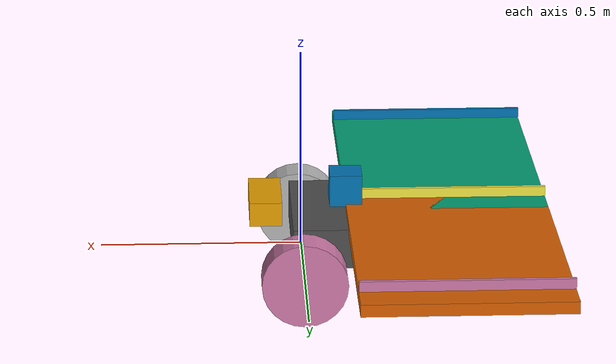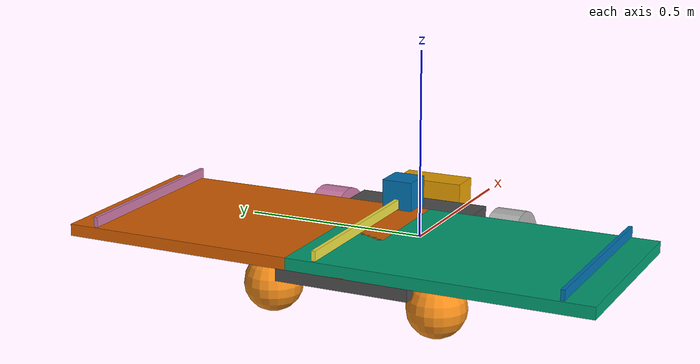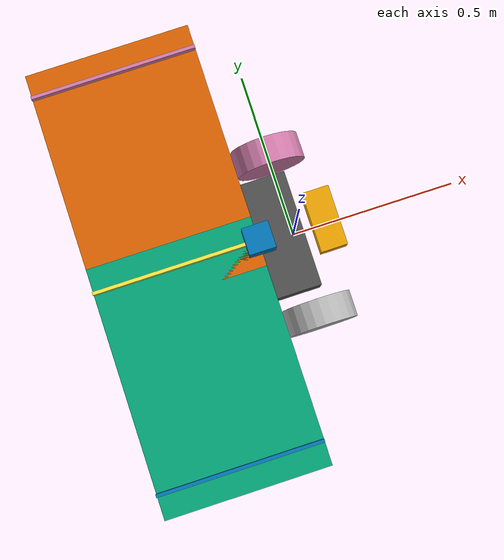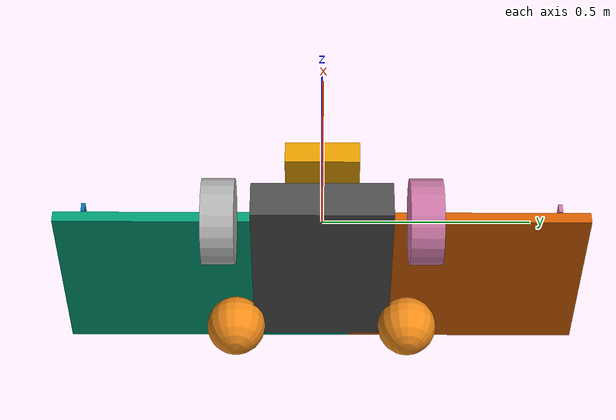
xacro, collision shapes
<?xml version="1.0" encoding="UTF-8"?>
<robot name="base_rover_big_top" xmlns:xacro="http://ros.org/wiki/xacro">
	<!--URDF uses SI Units: meters, radians and kilograms-->

	<!-- common constants -->
	<xacro:include filename="$(find rover_description)/urdf/common_properties.xacro"/>

	<xacro:include filename="$(find rover_description)/urdf/wheel.urdf.xacro"/>
	<xacro:include filename="$(find rover_description)/urdf/caster.urdf.xacro"/>
	<xacro:include filename="$(find rover_description)/urdf/camera.urdf.xacro"/>
	<xacro:include filename="$(find rover_description)/urdf/imu.urdf.xacro"/>
	<xacro:include filename="$(find rover_description)/urdf/laser.urdf.xacro"/>
	<xacro:include filename="$(find rover_description)/urdf/logo_big.urdf.xacro"/>
	<xacro:include filename="$(find rover_description)/urdf/ar_tag_multiple.urdf.xacro"/>

	<link name="base_link">
    	<visual>
      		<origin xyz="0 0 0" rpy="0 0 0"/>
      		<geometry>
        		<mesh filename="package://rover_description/meshes/rover_cart.dae"
						scale="0.001 0.001 0.001"/>
			</geometry>
			<material name="dark"/>
    	</visual>
		<collision>
			<origin xyz="-0.225 0 0.05" rpy="0 0 0"/>
			<geometry>
				<box size="0.50 0.35 0.10"/>
			</geometry>
		</collision>
		<inertial>
			<origin xyz="-0.225 0 0" rpy="0 0 0"/>
			<mass value="20"/> <!-- in kg -->
			<!-- M=20kg, x=0.5m, y=0.34m, z=0.1m-->
			<inertia ixx="0.2093333" ixy="0.0" ixz="0.0" iyy="0.4333333" iyz="0.0" izz="0.6093333"/>
        </inertial>
	</link>

	<!-- front_wheel macros -->
    <xacro:front_wheel alignment="left" x_="0" y_="0.25" z_="0" rx_="0" ry_="0" rz_="${pi}" off_="-0.12" f_="0.01" s_="1.0"  >
	</xacro:front_wheel>

    <xacro:front_wheel alignment="right" x_="0" y_="-0.25" z_="0" rx_="0" ry_="0.0" rz_="0" off_="0.12" f_="0.01" s_="1.0" >
	</xacro:front_wheel>

	<!-- Caster macros -->
    <xacro:caster alignment="left" x_="-0.4" y_="-0.22" z_="-0.03" >
	</xacro:caster>

    <xacro:caster alignment="right" x_="-0.4" y_="0.22" z_="-0.03" >
	</xacro:caster>

	<!-- logo macro -->

	<!-- ar_tag macros -->
	<!-- ar_tag macros top left-->

	<!-- ar_tag macros bottom right-->
    <xacro:ar_tag number_="13" x_="-0.36" y_="-0.3" z_="0.1" r_="0.0">
	</xacro:ar_tag>

	<!-- ar_tag macros top right-->

	<!-- ar_tag macros bottom left-->
    <xacro:ar_tag number_="5" x_="-0.36" y_="0.3" z_="0.1" r_="0.0">
	</xacro:ar_tag>

	<!-- Gazebo simulation plugins -->
	<xacro:include filename="$(find rover_description)/urdf/base_rover_cart.gazebo.xacro"/>

</robot>

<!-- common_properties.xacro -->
<robot name="xacro_properties" xmlns:xacro="http://ros.org/wiki/xacro">
  <xacro:property name="M_PI" value="3.1415926535897931"/>

  <!-- Init colour -->
  <material name="black">
      <color rgba="0.0 0.0 0.0 1.0"/>
  </material>

  <material name="dark">
    <color rgba="0.3 0.3 0.3 1.0"/>
  </material>

  <material name="light_black">
    <color rgba="0.4 0.4 0.4 1.0"/>
  </material>

  <material name="blue">
    <color rgba="0.0 0.0 0.8 1.0"/>
  </material>

  <material name="green">
    <color rgba="0.0 0.8 0.0 1.0"/>
  </material>

  <material name="grey">
    <color rgba="0.5 0.5 0.5 1.0"/>
  </material>

  <material name="orange">
    <color rgba="${255/255} ${108/255} ${10/255} 1.0"/>
  </material>

  <material name="brown">
    <color rgba="${222/255} ${207/255} ${195/255} 1.0"/>
  </material>

  <material name="silver">
    <color rgba="${192/255} ${192/255} ${192/255} 1.0"/>
  </material>

  <material name="red">
    <color rgba="0.8 0.0 0.0 1.0"/>
  </material>

  <material name="white">
    <color rgba="1.0 1.0 1.0 1.0"/>
  </material>
</robot>

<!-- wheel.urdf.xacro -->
<robot xmlns:xacro="http://ros.org/wiki/xacro" name="front_wheel">
	<xacro:macro name="front_wheel" params="alignment x_ y_ z_ rx_ ry_ rz_ off_ f_ s_ ">

		<joint name="wheel_${alignment}_joint" type="continuous">
			<parent link="base_link"/>
			<child link="wheel_${alignment}_link"/>
			<dynamics damping="0.0005" friction="0.00" /> <!-- can be set to the right values -->
			<!--limit upper="0.001"/--> <!-- set to correct values -->
			<axis xyz="0 1 0"/>
			<origin xyz= "${x_} ${y_} ${z_}"/>
		</joint>

		<link name="wheel_${alignment}_link">
			<visual>
				<origin xyz="0 0 0" rpy="0 0 ${rz_}"/>
				<geometry>
					<mesh 	filename="package://rover_description/meshes/wheel_rover.dae"
							scale="0.001 0.001 0.001"/>
				</geometry>
			</visual>
			<inertial>
				<origin xyz="0 0 0"/>
				<mass value="0.5" />
				<inertia ixx="0.000986875" ixy="0.0" ixz="0.0" iyy="0.000145375" iyz="0.0" izz="0.000986875" />
			</inertial>
			<collision>
				<origin xyz="0 0 0" rpy="${pi/2} 0 0"/>
				<geometry>
					<cylinder length="0.08" radius="0.105"/>
				</geometry>
			</collision>
		</link>

		<gazebo reference="wheel_${alignment}_link">
			<kp value="50000000.0" />
			<kd value="0.2" />
			<minDepth>0.001</minDepth>
			<maxVel>0.01</maxVel>
			<mu1 value="10.0"/>
			<mu2 value="10.0"/>
			<fdir1>1 0 0</fdir1>
		</gazebo>
	</xacro:macro>
</robot>

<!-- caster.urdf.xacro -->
<robot xmlns:xacro="http://ros.org/wiki/xacro" name="caster_wheel">
	<xacro:macro name="caster" params="alignment x_ y_ z_">

		<joint name="caster_${alignment}_joint" type="fixed">
			<parent link="base_link"/>
			<child link="caster_${alignment}_link"/>
			<axis xyz="0 1 0"/>
			<dynamics damping="0.0005" friction="0.00" />
			<origin xyz= "${x_} ${y_} ${z_}"/>
		</joint>

		<link name="caster_${alignment}_link">
			<inertial>
				<origin xyz="0 0 0"/>
				<mass value="0.001" />
				<!-- M=3kg, h=0.08m, r=0.105m-->
				<inertia ixx="0.000001" ixy="0.0" ixz="0.0" iyy= "0.000001" iyz="0.0" izz="0.000001" />
			</inertial>

			<collision>
				<origin xyz="0 0 0" rpy="0 0 0"/>
				<geometry>
					<sphere radius="0.075"/>
				</geometry>
			</collision>
		</link>

		<gazebo reference="caster_${alignment}_link">
			<kp value="50000000.0" />
			<kd value="0.2" />
			<mu1 value="0.00"/>
			<mu2 value="0.00"/>
			<minDepth>0.001</minDepth>
			<maxVel>0.01</maxVel>
			<fdir1>1 0 0</fdir1>
			<material>Gazebo/Orange</material>
		</gazebo>
	</xacro:macro>
</robot>

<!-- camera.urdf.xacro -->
<robot>

  <joint name="astra_joint" type="fixed">
    <origin xyz="0.09 0 0.11" rpy="0 0 0"/>
    <parent link="base_link"/>
    <child link="camera_link"/>
  </joint>

  <link name="camera_link">

    <visual>
      <origin xyz="0 0 0" rpy="${pi/2} 0 ${pi/2}"/>
      <geometry>
        <mesh filename="package://rover_description/meshes/astra.dae" scale="0.001 0.001 0.001" />
      </geometry>
    </visual>

<!-- might be a bit small... -->
    <inertial>
      <mass value="1e-5" />
      <origin xyz="0 0 0" rpy="0 0 0"/>
      <inertia ixx="0" ixy="0" ixz="0" iyy="0" iyz="0" izz="0" />
    </inertial>

    <collision>
      <origin xyz="0 0 0" rpy="0 0 0"/>
      <geometry>0
        <box size="0.08 0.18 0.06"/>
      </geometry>
    </collision>

  </link>

  <joint name="camera_optical_joint" type="fixed">
    <origin xyz="0 0 0" rpy="${-pi/2} 0 ${-pi/2}"/>
    <parent link="camera_link"/>
    <child link="camera_rgb_frame"/>
  </joint>

  <link name="camera_rgb_frame">
  </link>

  <joint name="camera_depth_joint" type="fixed">
    <origin xyz="0 0 0" rpy="${-pi/2} 0 ${-pi/2}"/>
    <parent link="camera_link"/>
    <child link="camera_depth_frame"/>
  </joint>

  <link name="camera_depth_frame">
  </link>

  <gazebo reference="camera_link">
    <sensor type="depth" name="openni_camera_camera">
      <always_on>1</always_on>
      <visualize>true</visualize>
      <camera>
        <horizontal_fov>1.047</horizontal_fov>
        <image>
          <width>640</width>
          <height>480</height>
          <format>R8G8B8</format>
        </image>
        <depth_camera>

        </depth_camera>
        <clip>
          <near>0.1</near>
          <far>100</far>
        </clip>
      </camera>
      <plugin name="kinect_controller" filename="libgazebo_ros_openni_kinect.so">
        <alwaysOn>true</alwaysOn>
        <updateRate>10.0</updateRate>
        <cameraName>camera</cameraName>
        <frameName>camera_depth_frame</frameName>
        <imageTopicName>rgb/image_raw</imageTopicName>
        <depthImageTopicName>depth/image_raw</depthImageTopicName>
        <pointCloudTopicName>depth/points</pointCloudTopicName>
        <cameraInfoTopicName>rgb/camera_info</cameraInfoTopicName>
        <depthImageCameraInfoTopicName>depth/camera_info</depthImageCameraInfoTopicName>
        <pointCloudCutoff>0.4</pointCloudCutoff>
        <hackBaseline>0.07</hackBaseline>
        <distortionK1>0.0</distortionK1>
        <distortionK2>0.0</distortionK2>
        <distortionK3>0.0</distortionK3>
        <distortionT1>0.0</distortionT1>
        <distortionT2>0.0</distortionT2>
        <CxPrime>0.0</CxPrime>
        <Cx>0.0</Cx>
        <Cy>0.0</Cy>
        <focalLength>0.0</focalLength>
      </plugin>
    </sensor>
  </gazebo>

</robot>

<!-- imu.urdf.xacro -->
<robot>
  <link name="imu_link"/>
  <joint name="imu_joint" type="fixed">
    <parent link="base_link"/>
    <child link="imu_link"/>
    <origin xyz="0.0 0 0.068" rpy="0 0 0"/>
  </joint>

   <!-- Gazebo sensor plugin -->
  <gazebo>
    <plugin name= "imu_plugin" filename= "libgazebo_ros_imu.so" >
      <always_on> true </always_on>
      <bodyName> imu_link </bodyName>
      <frameName> imu_link </frameName>
      <topicName> imu </topicName>
      <serviceName> imu_service </serviceName>
      <gaussianNoise> 0.0 </gaussianNoise>
      <updateRate> 200 </updateRate>
      <imu>
        <noise>
          <type> gaussian </type>
          <rate>
            <mean> 0.0 </mean>
            <stddev> 2e-4 </stddev>
            <bias_mean> 0.0000075 </bias_mean>
            <bias_stddev> 0.0000008 </bias_stddev>
          </rate>
          <accel>
            <mean> 0.0 </mean>
            <stddev> 1.7e-2 </stddev>
            <bias_mean> 0.1 </bias_mean>
            <bias_stddev> 0.001 </bias_stddev>
          </accel>
        </noise>
      </imu>
    </plugin>
  </gazebo>

</robot>

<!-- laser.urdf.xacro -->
<robot>

  <joint name="rplidar_joint" type="fixed">
    <origin xyz="-0.11 0 0.25" rpy="0 0 3.14"/>
    <parent link="base_link"/>
    <child link="laser"/>
  </joint>

  <link name="laser">

    <visual>
      <origin xyz="0 0 -0.15" rpy="0 0 0"/>
      <geometry>
        <mesh filename="package://rover_description/meshes/lidar.dae" scale="0.001 0.001 0.001" />
      </geometry>
    </visual>

    <collision>
      <origin xyz="0 0 -0.1" rpy="0 0 0"/>
      <geometry>
        <box size="0.08 0.08 0.08"/>
      </geometry>
    </collision>

    <inertial>
      <mass value="1e-5" />
      <origin xyz="0 0 0.058" rpy="1.5707 0 4.71"/>
      <inertia ixx="0" ixy="0" ixz="0" iyy="0" iyz="0" izz="0" />
    </inertial>

  </link>

  <!-- If you cant't use your GPU comment RpLidar using GPU and uncomment RpLidar using CPU
    gazebo plugin. -->

  <!-- RpLidar using GPU -->

  <!-- RpLidar using CPU -->
   <gazebo reference="laser">
    <sensor type="ray" name="head_rplidar_sensor">
      <pose>0 0 0.06 0 0 0</pose>
      <visualize>false</visualize>
      <update_rate>40</update_rate>
      <ray>
        <scan>
          <horizontal>
            <samples>720</samples>
            <resolution>1</resolution>
            <min_angle>-3.14159265</min_angle>
            <max_angle>3.14159265</max_angle>
          </horizontal>
        </scan>
        <range>
          <min>0.2</min>
          <max>30.0</max>
          <resolution>0.01</resolution>
        </range>
        <noise>
          <type>gaussian</type>
          <mean>0.0</mean>
          <stddev>0.01</stddev>
        </noise>
      </ray>
      <plugin name="gazebo_ros_head_rplidar_controller" filename="libgazebo_ros_laser.so">
        <topicName>scan</topicName>
        <frameName>laser</frameName>
      </plugin>
    </sensor>
  </gazebo>

</robot>

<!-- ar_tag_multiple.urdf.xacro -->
<robot xmlns:xacro="http://ros.org/wiki/xacro" name="ar_tag">
	<xacro:macro name="ar_tag" params="number_ x_ y_ z_ r_">
		<link name="ar_tag_${number_}">
			<visual>
				<origin xyz="0 0 0" rpy="0 0 0"/>
				<geometry>
					<box size="0.5 0.6 0.03"/>
				</geometry>
			</visual>
			<inertial>
				<origin xyz="0 0 0"/>
				<mass value="0.001" />
				<inertia ixx="0.000001" ixy="0.0" ixz="0.0" iyy= "0.000001" iyz="0.0" izz="0.000001" />
			</inertial>
			<collision>
				<origin xyz="0 0 0" rpy="0 0 0"/>
				<geometry>
					<box size="0.5 0.75 0.03"/>
				</geometry>
			</collision>
		</link>

		<joint name="ar_tag_${number_}_joint" type="fixed">
			<parent link="base_link"/>
			<child link="ar_tag_${number_}"/>
			<origin xyz= "${x_} ${y_} ${z_}" rpy="0.0 ${r_} 0.0"/>
		</joint>

		<gazebo reference="ar_tag_${number_}">
			<kp value="50000000.0" />
			<kd value="0.2" />
			<mu1 value="1.0"/>
			<mu2 value="1.0"/>
			<minDepth>0.001</minDepth>
                        <xacro:if value="${number_ == 5}">
                                <material>ar_tag_5</material>
                        </xacro:if>
                        <xacro:if value="${number_ == 13}">
                                <material>ar_tag_13</material>
                        </xacro:if>
                        <xacro:if value="${number_ == 1}">
                                <material>logo_alm</material>
                        </xacro:if>
                        <xacro:if value="${number_ == 2}">
                                <material>logo_alm</material>
                        </xacro:if>

		</gazebo>

		<link name="ar_tag_${number_}_wall_1">
			<visual>
				<origin xyz="0 0 0" rpy="0 0 0"/>
				<geometry>
					<box size="0.5 0.01 0.025"/>
				</geometry>
			</visual>
			<inertial>
				<origin xyz="0 0 0"/>
				<mass value="0.001" />
				<inertia ixx="0.000001" ixy="0.0" ixz="0.0" iyy= "0.000001" iyz="0.0" izz="0.000001" />
			</inertial>
			<collision>
				<origin xyz="0 0 0" rpy="0 0 0"/>
				<geometry>
					<box size="0.5 0.01 0.025"/>
				</geometry>
			</collision>
		</link>

		<joint name="ar_tag_${number_}_wall_joint_1" type="fixed">
			<parent link="ar_tag_${number_}"/>
			<child link="ar_tag_${number_}_wall_1"/>
			<origin xyz="0 0.3 0.03" rpy="0 0 0"/>
		</joint>

		<link name="ar_tag_${number_}_wall_2">
			<visual>
				<origin xyz="0 0 0" rpy="0 0 0"/>
				<geometry>
					<box size="0.5 0.01 0.025"/>
				</geometry>
			</visual>
			<inertial>
				<origin xyz="0 0 0"/>
				<mass value="0.001" />
				<inertia ixx="0.000001" ixy="0.0" ixz="0.0" iyy= "0.000001" iyz="0.0" izz="0.000001" />
			</inertial>
			<collision>
				<origin xyz="0 0 0" rpy="0 0 0"/>
				<geometry>
					<box size="0.5 0.01 0.025"/>
				</geometry>
			</collision>
		</link>

		<joint name="ar_tag_${number_}_wall_joint_2" type="fixed">
			<parent link="ar_tag_${number_}"/>
			<child link="ar_tag_${number_}_wall_2"/>
			<origin xyz="0 -0.3 0.03" rpy="0 0 0"/>
		</joint>

	</xacro:macro>
</robot>
